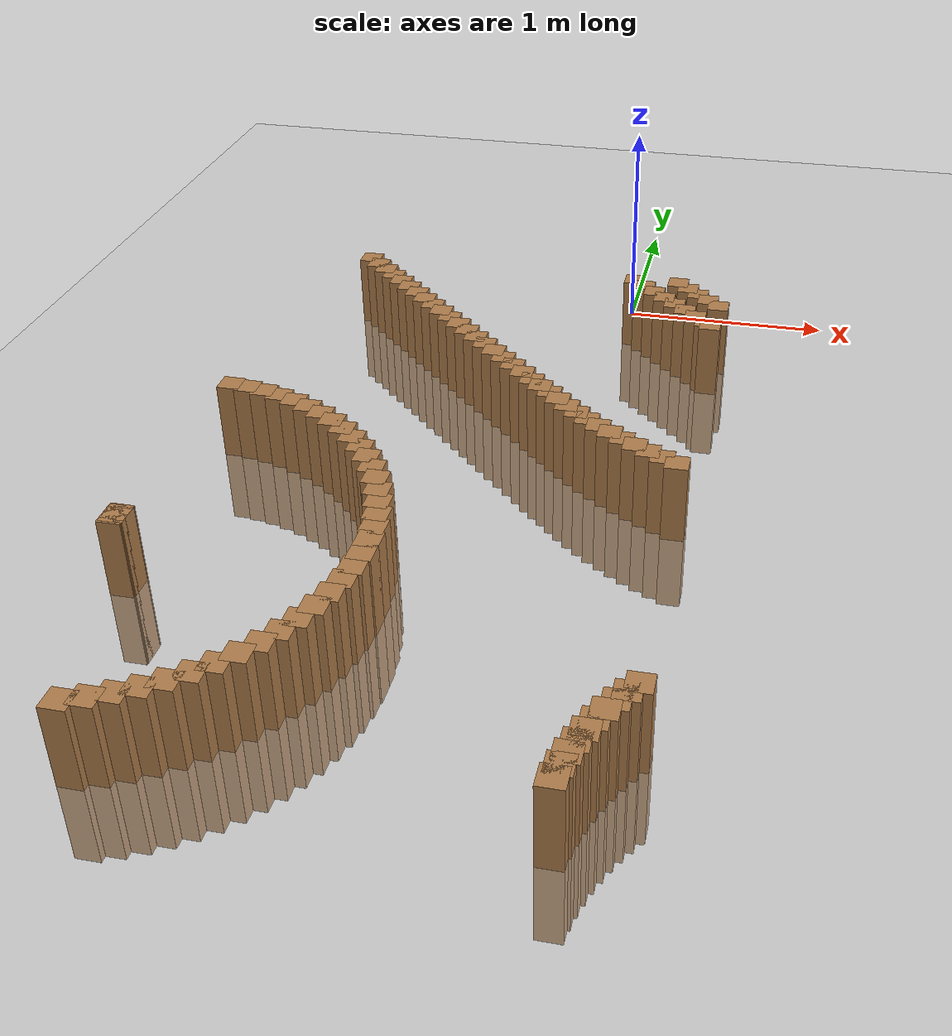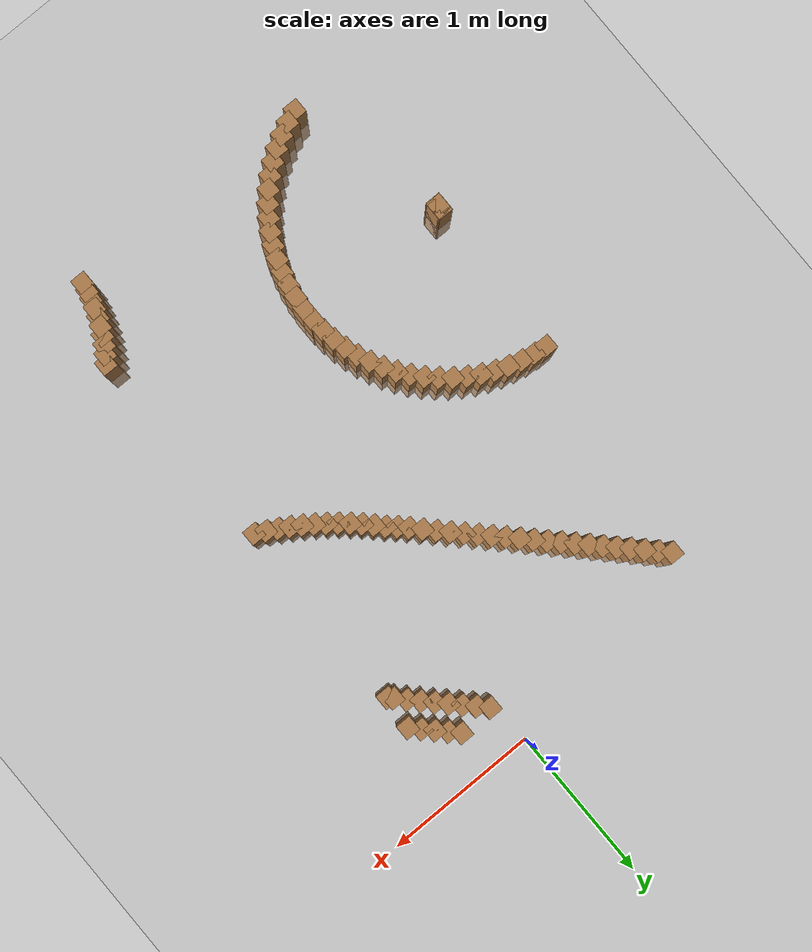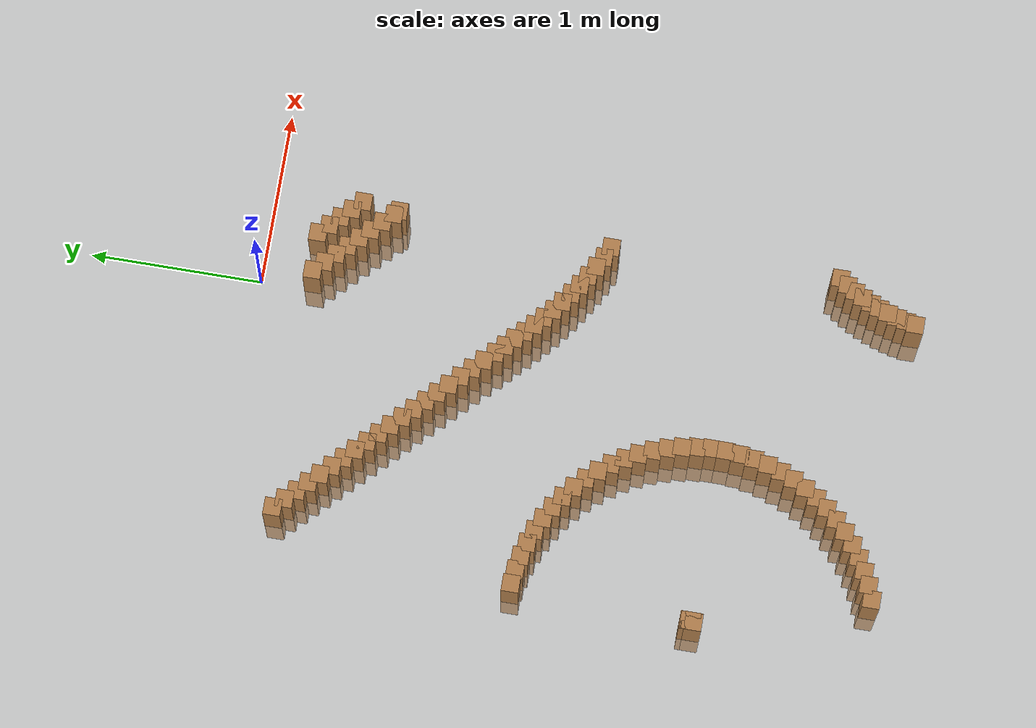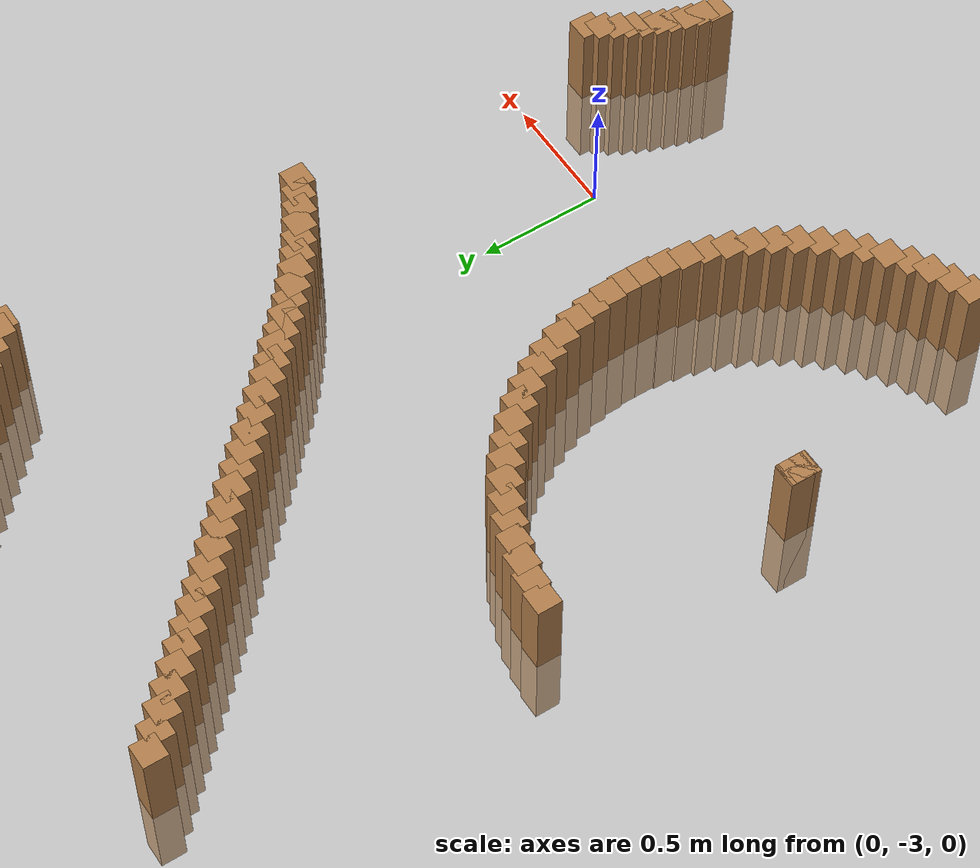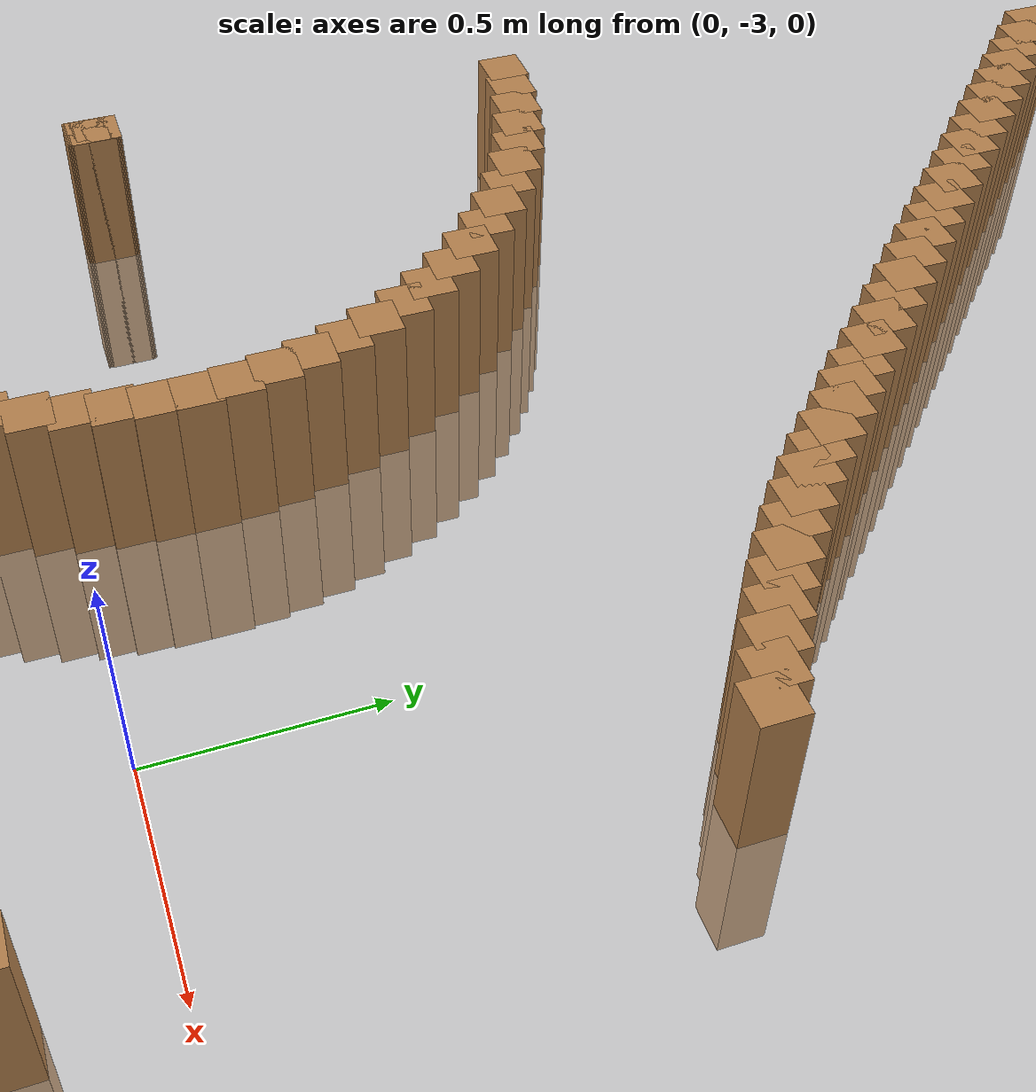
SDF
<sdf version="1.6">
 <world name="default">
  <model name="ground_plane">
   <static>1</static>
   <link name="link">
    <collision name="collision">
     <geometry><plane><normal>0 0 1</normal><size>100 100</size></plane></geometry>
     <surface><friction><ode><mu>100</mu><mu2>50</mu2></ode></friction></surface>
    </collision>
    <visual name="visual">
     <cast_shadows>0</cast_shadows>
     <geometry><plane><normal>0 0 1</normal><size>100 100</size></plane></geometry>
     <material>
      <script><uri>file://media/materials/scripts/gazebo.material</uri><name>Gazebo/Grey</name></script>
     </material>
    </visual>
   </link>
  </model>
  <model name="track">
   <link name="inner_261">
    <pose>0.459542 -1.963471 0.000000 0 -0 0</pose>
    <collision name="collision"><geometry><box><size>0.1 0.1 0.7</size></box></geometry></collision>
    <visual name="visual">
     <geometry><box><size>0.1 0.1 0.7</size></box></geometry>
     <material>
      <script><uri>file://media/materials/scripts/gazebo.material</uri><name>Gazebo/Wood</name></script>
     </material>
    </visual>
   </link>
   <link name="inner_262">
    <pose>0.395277 -1.931175 0.000000 0 -0 0</pose>
    <collision name="collision"><geometry><box><size>0.1 0.1 0.7</size></box></geometry></collision>
    <visual name="visual">
     <geometry><box><size>0.1 0.1 0.7</size></box></geometry>
     <material>
      <script><uri>file://media/materials/scripts/gazebo.material</uri><name>Gazebo/Wood</name></script>
     </material>
    </visual>
   </link>
   <link name="inner_263">
    <pose>0.332395 -1.896803 0.000000 0 -0 0</pose>
    <collision name="collision"><geometry><box><size>0.1 0.1 0.7</size></box></geometry></collision>
    <visual name="visual">
     <geometry><box><size>0.1 0.1 0.7</size></box></geometry>
     <material>
      <script><uri>file://media/materials/scripts/gazebo.material</uri><name>Gazebo/Wood</name></script>
     </material>
    </visual>
   </link>
   <link name="inner_264">
    <pose>0.270962 -1.860413 0.000000 0 -0 0</pose>
    <collision name="collision"><geometry><box><size>0.1 0.1 0.7</size></box></geometry></collision>
    <visual name="visual">
     <geometry><box><size>0.1 0.1 0.7</size></box></geometry>
     <material>
      <script><uri>file://media/materials/scripts/gazebo.material</uri><name>Gazebo/Wood</name></script>
     </material>
    </visual>
   </link>
   <link name="inner_265">
    <pose>0.211042 -1.822065 0.000000 0 -0 0</pose>
    <collision name="collision"><geometry><box><size>0.1 0.1 0.7</size></box></geometry></collision>
    <visual name="visual">
     <geometry><box><size>0.1 0.1 0.7</size></box></geometry>
     <material>
      <script><uri>file://media/materials/scripts/gazebo.material</uri><name>Gazebo/Wood</name></script>
     </material>
    </visual>
   </link>
   <link name="inner_266">
    <pose>0.152698 -1.781817 0.000000 0 -0 0</pose>
    <collision name="collision"><geometry><box><size>0.1 0.1 0.7</size></box></geometry></collision>
    <visual name="visual">
     <geometry><box><size>0.1 0.1 0.7</size></box></geometry>
     <material>
      <script><uri>file://media/materials/scripts/gazebo.material</uri><name>Gazebo/Wood</name></script>
     </material>
    </visual>
   </link>
   <link name="inner_267">
    <pose>0.095989 -1.739734 0.000000 0 -0 0</pose>
    <collision name="collision"><geometry><box><size>0.1 0.1 0.7</size></box></geometry></collision>
    <visual name="visual">
     <geometry><box><size>0.1 0.1 0.7</size></box></geometry>
     <material>
      <script><uri>file://media/materials/scripts/gazebo.material</uri><name>Gazebo/Wood</name></script>
     </material>
    </visual>
   </link>
   <link name="inner_268">
    <pose>0.040971 -1.695879 0.000000 0 -0 0</pose>
    <collision name="collision"><geometry><box><size>0.1 0.1 0.7</size></box></geometry></collision>
    <visual name="visual">
     <geometry><box><size>0.1 0.1 0.7</size></box></geometry>
     <material>
      <script><uri>file://media/materials/scripts/gazebo.material</uri><name>Gazebo/Wood</name></script>
     </material>
    </visual>
   </link>
   <link name="inner_269">
    <pose>-0.012299 -1.650320 0.000000 0 -0 0</pose>
    <collision name="collision"><geometry><box><size>0.1 0.1 0.7</size></box></geometry></collision>
    <visual name="visual">
     <geometry><box><size>0.1 0.1 0.7</size></box></geometry>
     <material>
      <script><uri>file://media/materials/scripts/gazebo.material</uri><name>Gazebo/Wood</name></script>
     </material>
    </visual>
   </link>
   <link name="inner_270">
    <pose>-0.063772 -1.603123 0.000000 0 -0 0</pose>
    <collision name="collision"><geometry><box><size>0.1 0.1 0.7</size></box></geometry></collision>
    <visual name="visual">
     <geometry><box><size>0.1 0.1 0.7</size></box></geometry>
     <material>
      <script><uri>file://media/materials/scripts/gazebo.material</uri><name>Gazebo/Wood</name></script>
     </material>
    </visual>
   </link>
   <link name="inner_271">
    <pose>-0.113396 -1.554359 0.000000 0 -0 0</pose>
    <collision name="collision"><geometry><box><size>0.1 0.1 0.7</size></box></geometry></collision>
    <visual name="visual">
     <geometry><box><size>0.1 0.1 0.7</size></box></geometry>
     <material>
      <script><uri>file://media/materials/scripts/gazebo.material</uri><name>Gazebo/Wood</name></script>
     </material>
    </visual>
   </link>
   <link name="inner_272">
    <pose>-0.161126 -1.504098 0.000000 0 -0 0</pose>
    <collision name="collision"><geometry><box><size>0.1 0.1 0.7</size></box></geometry></collision>
    <visual name="visual">
     <geometry><box><size>0.1 0.1 0.7</size></box></geometry>
     <material>
      <script><uri>file://media/materials/scripts/gazebo.material</uri><name>Gazebo/Wood</name></script>
     </material>
    </visual>
   </link>
   <link name="inner_273">
    <pose>-0.212168 -1.458035 0.000000 0 -0 0</pose>
    <collision name="collision"><geometry><box><size>0.1 0.1 0.7</size></box></geometry></collision>
    <visual name="visual">
     <geometry><box><size>0.1 0.1 0.7</size></box></geometry>
     <material>
      <script><uri>file://media/materials/scripts/gazebo.material</uri><name>Gazebo/Wood</name></script>
     </material>
    </visual>
   </link>
   <link name="inner_274">
    <pose>-0.261607 -1.410256 0.000000 0 -0 0</pose>
    <collision name="collision"><geometry><box><size>0.1 0.1 0.7</size></box></geometry></collision>
    <visual name="visual">
     <geometry><box><size>0.1 0.1 0.7</size></box></geometry>
     <material>
      <script><uri>file://media/materials/scripts/gazebo.material</uri><name>Gazebo/Wood</name></script>
     </material>
    </visual>
   </link>
   <link name="inner_275">
    <pose>-0.316542 -1.352604 0.000000 0 -0 0</pose>
    <collision name="collision"><geometry><box><size>0.1 0.1 0.7</size></box></geometry></collision>
    <visual name="visual">
     <geometry><box><size>0.1 0.1 0.7</size></box></geometry>
     <material>
      <script><uri>file://media/materials/scripts/gazebo.material</uri><name>Gazebo/Wood</name></script>
     </material>
    </visual>
   </link>
   <link name="inner_276">
    <pose>-0.374194 -1.294952 0.000000 0 -0 0</pose>
    <collision name="collision"><geometry><box><size>0.1 0.1 0.7</size></box></geometry></collision>
    <visual name="visual">
     <geometry><box><size>0.1 0.1 0.7</size></box></geometry>
     <material>
      <script><uri>file://media/materials/scripts/gazebo.material</uri><name>Gazebo/Wood</name></script>
     </material>
    </visual>
   </link>
   <link name="inner_277">
    <pose>-0.431846 -1.237300 0.000000 0 -0 0</pose>
    <collision name="collision"><geometry><box><size>0.1 0.1 0.7</size></box></geometry></collision>
    <visual name="visual">
     <geometry><box><size>0.1 0.1 0.7</size></box></geometry>
     <material>
      <script><uri>file://media/materials/scripts/gazebo.material</uri><name>Gazebo/Wood</name></script>
     </material>
    </visual>
   </link>
   <link name="inner_278">
    <pose>-0.489498 -1.179648 0.000000 0 -0 0</pose>
    <collision name="collision"><geometry><box><size>0.1 0.1 0.7</size></box></geometry></collision>
    <visual name="visual">
     <geometry><box><size>0.1 0.1 0.7</size></box></geometry>
     <material>
      <script><uri>file://media/materials/scripts/gazebo.material</uri><name>Gazebo/Wood</name></script>
     </material>
    </visual>
   </link>
   <link name="inner_279">
    <pose>-0.547150 -1.121997 0.000000 0 -0 0</pose>
    <collision name="collision"><geometry><box><size>0.1 0.1 0.7</size></box></geometry></collision>
    <visual name="visual">
     <geometry><box><size>0.1 0.1 0.7</size></box></geometry>
     <material>
      <script><uri>file://media/materials/scripts/gazebo.material</uri><name>Gazebo/Wood</name></script>
     </material>
    </visual>
   </link>
   <link name="inner_280">
    <pose>-0.604801 -1.064345 0.000000 0 -0 0</pose>
    <collision name="collision"><geometry><box><size>0.1 0.1 0.7</size></box></geometry></collision>
    <visual name="visual">
     <geometry><box><size>0.1 0.1 0.7</size></box></geometry>
     <material>
      <script><uri>file://media/materials/scripts/gazebo.material</uri><name>Gazebo/Wood</name></script>
     </material>
    </visual>
   </link>
   <link name="inner_281">
    <pose>-0.662453 -1.006693 0.000000 0 -0 0</pose>
    <collision name="collision"><geometry><box><size>0.1 0.1 0.7</size></box></geometry></collision>
    <visual name="visual">
     <geometry><box><size>0.1 0.1 0.7</size></box></geometry>
     <material>
      <script><uri>file://media/materials/scripts/gazebo.material</uri><name>Gazebo/Wood</name></script>
     </material>
    </visual>
   </link>
   <link name="inner_282">
    <pose>-0.720105 -0.949041 0.000000 0 -0 0</pose>
    <collision name="collision"><geometry><box><size>0.1 0.1 0.7</size></box></geometry></collision>
    <visual name="visual">
     <geometry><box><size>0.1 0.1 0.7</size></box></geometry>
     <material>
      <script><uri>file://media/materials/scripts/gazebo.material</uri><name>Gazebo/Wood</name></script>
     </material>
    </visual>
   </link>
   <link name="inner_283">
    <pose>-0.777757 -0.891389 0.000000 0 -0 0</pose>
    <collision name="collision"><geometry><box><size>0.1 0.1 0.7</size></box></geometry></collision>
    <visual name="visual">
     <geometry><box><size>0.1 0.1 0.7</size></box></geometry>
     <material>
      <script><uri>file://media/materials/scripts/gazebo.material</uri><name>Gazebo/Wood</name></script>
     </material>
    </visual>
   </link>
   <link name="inner_284">
    <pose>-0.835409 -0.833737 0.000000 0 -0 0</pose>
    <collision name="collision"><geometry><box><size>0.1 0.1 0.7</size></box></geometry></collision>
    <visual name="visual">
     <geometry><box><size>0.1 0.1 0.7</size></box></geometry>
     <material>
      <script><uri>file://media/materials/scripts/gazebo.material</uri><name>Gazebo/Wood</name></script>
     </material>
    </visual>
   </link>
   <link name="inner_285">
    <pose>-0.893060 -0.776086 0.000000 0 -0 0</pose>
    <collision name="collision"><geometry><box><size>0.1 0.1 0.7</size></box></geometry></collision>
    <visual name="visual">
     <geometry><box><size>0.1 0.1 0.7</size></box></geometry>
     <material>
      <script><uri>file://media/materials/scripts/gazebo.material</uri><name>Gazebo/Wood</name></script>
     </material>
    </visual>
   </link>
   <link name="inner_286">
    <pose>-0.950712 -0.718434 0.000000 0 -0 0</pose>
    <collision name="collision"><geometry><box><size>0.1 0.1 0.7</size></box></geometry></collision>
    <visual name="visual">
     <geometry><box><size>0.1 0.1 0.7</size></box></geometry>
     <material>
      <script><uri>file://media/materials/scripts/gazebo.material</uri><name>Gazebo/Wood</name></script>
     </material>
    </visual>
   </link>
   <link name="inner_287">
    <pose>-1.008364 -0.660782 0.000000 0 -0 0</pose>
    <collision name="collision"><geometry><box><size>0.1 0.1 0.7</size></box></geometry></collision>
    <visual name="visual">
     <geometry><box><size>0.1 0.1 0.7</size></box></geometry>
     <material>
      <script><uri>file://media/materials/scripts/gazebo.material</uri><name>Gazebo/Wood</name></script>
     </material>
    </visual>
   </link>
   <link name="inner_288">
    <pose>-1.066016 -0.603130 0.000000 0 -0 0</pose>
    <collision name="collision"><geometry><box><size>0.1 0.1 0.7</size></box></geometry></collision>
    <visual name="visual">
     <geometry><box><size>0.1 0.1 0.7</size></box></geometry>
     <material>
      <script><uri>file://media/materials/scripts/gazebo.material</uri><name>Gazebo/Wood</name></script>
     </material>
    </visual>
   </link>
   <link name="inner_289">
    <pose>-1.123668 -0.545478 0.000000 0 -0 0</pose>
    <collision name="collision"><geometry><box><size>0.1 0.1 0.7</size></box></geometry></collision>
    <visual name="visual">
     <geometry><box><size>0.1 0.1 0.7</size></box></geometry>
     <material>
      <script><uri>file://media/materials/scripts/gazebo.material</uri><name>Gazebo/Wood</name></script>
     </material>
    </visual>
   </link>
   <link name="inner_290">
    <pose>-1.181319 -0.487827 0.000000 0 -0 0</pose>
    <collision name="collision"><geometry><box><size>0.1 0.1 0.7</size></box></geometry></collision>
    <visual name="visual">
     <geometry><box><size>0.1 0.1 0.7</size></box></geometry>
     <material>
      <script><uri>file://media/materials/scripts/gazebo.material</uri><name>Gazebo/Wood</name></script>
     </material>
    </visual>
   </link>
   <link name="inner_291">
    <pose>-1.238971 -0.430175 0.000000 0 -0 0</pose>
    <collision name="collision"><geometry><box><size>0.1 0.1 0.7</size></box></geometry></collision>
    <visual name="visual">
     <geometry><box><size>0.1 0.1 0.7</size></box></geometry>
     <material>
      <script><uri>file://media/materials/scripts/gazebo.material</uri><name>Gazebo/Wood</name></script>
     </material>
    </visual>
   </link>
   <link name="inner_292">
    <pose>-1.296623 -0.372523 0.000000 0 -0 0</pose>
    <collision name="collision"><geometry><box><size>0.1 0.1 0.7</size></box></geometry></collision>
    <visual name="visual">
     <geometry><box><size>0.1 0.1 0.7</size></box></geometry>
     <material>
      <script><uri>file://media/materials/scripts/gazebo.material</uri><name>Gazebo/Wood</name></script>
     </material>
    </visual>
   </link>
   <link name="inner_293">
    <pose>-1.354275 -0.314871 0.000000 0 -0 0</pose>
    <collision name="collision"><geometry><box><size>0.1 0.1 0.7</size></box></geometry></collision>
    <visual name="visual">
     <geometry><box><size>0.1 0.1 0.7</size></box></geometry>
     <material>
      <script><uri>file://media/materials/scripts/gazebo.material</uri><name>Gazebo/Wood</name></script>
     </material>
    </visual>
   </link>
   <link name="inner_354">
    <pose>-1.564920 -1.719590 0.000000 0 -0 0</pose>
    <collision name="collision"><geometry><box><size>0.1 0.1 0.7</size></box></geometry></collision>
    <visual name="visual">
     <geometry><box><size>0.1 0.1 0.7</size></box></geometry>
     <material>
      <script><uri>file://media/materials/scripts/gazebo.material</uri><name>Gazebo/Wood</name></script>
     </material>
    </visual>
   </link>
   <link name="inner_355">
    <pose>-1.481734 -1.729691 0.000000 0 -0 0</pose>
    <collision name="collision"><geometry><box><size>0.1 0.1 0.7</size></box></geometry></collision>
    <visual name="visual">
     <geometry><box><size>0.1 0.1 0.7</size></box></geometry>
     <material>
      <script><uri>file://media/materials/scripts/gazebo.material</uri><name>Gazebo/Wood</name></script>
     </material>
    </visual>
   </link>
   <link name="inner_356">
    <pose>-1.399631 -1.746452 0.000000 0 -0 0</pose>
    <collision name="collision"><geometry><box><size>0.1 0.1 0.7</size></box></geometry></collision>
    <visual name="visual">
     <geometry><box><size>0.1 0.1 0.7</size></box></geometry>
     <material>
      <script><uri>file://media/materials/scripts/gazebo.material</uri><name>Gazebo/Wood</name></script>
     </material>
    </visual>
   </link>
   <link name="inner_357">
    <pose>-1.319143 -1.769766 0.000000 0 -0 0</pose>
    <collision name="collision"><geometry><box><size>0.1 0.1 0.7</size></box></geometry></collision>
    <visual name="visual">
     <geometry><box><size>0.1 0.1 0.7</size></box></geometry>
     <material>
      <script><uri>file://media/materials/scripts/gazebo.material</uri><name>Gazebo/Wood</name></script>
     </material>
    </visual>
   </link>
   <link name="inner_358">
    <pose>-1.240792 -1.799481 0.000000 0 -0 0</pose>
    <collision name="collision"><geometry><box><size>0.1 0.1 0.7</size></box></geometry></collision>
    <visual name="visual">
     <geometry><box><size>0.1 0.1 0.7</size></box></geometry>
     <material>
      <script><uri>file://media/materials/scripts/gazebo.material</uri><name>Gazebo/Wood</name></script>
     </material>
    </visual>
   </link>
   <link name="inner_359">
    <pose>-1.165085 -1.835404 0.000000 0 -0 0</pose>
    <collision name="collision"><geometry><box><size>0.1 0.1 0.7</size></box></geometry></collision>
    <visual name="visual">
     <geometry><box><size>0.1 0.1 0.7</size></box></geometry>
     <material>
      <script><uri>file://media/materials/scripts/gazebo.material</uri><name>Gazebo/Wood</name></script>
     </material>
    </visual>
   </link>
   <link name="inner_360">
    <pose>-1.092515 -1.877302 0.000000 0 -0 0</pose>
    <collision name="collision"><geometry><box><size>0.1 0.1 0.7</size></box></geometry></collision>
    <visual name="visual">
     <geometry><box><size>0.1 0.1 0.7</size></box></geometry>
     <material>
      <script><uri>file://media/materials/scripts/gazebo.material</uri><name>Gazebo/Wood</name></script>
     </material>
    </visual>
   </link>
   <link name="inner_361">
    <pose>-1.023552 -1.924904 0.000000 0 -0 0</pose>
    <collision name="collision"><geometry><box><size>0.1 0.1 0.7</size></box></geometry></collision>
    <visual name="visual">
     <geometry><box><size>0.1 0.1 0.7</size></box></geometry>
     <material>
      <script><uri>file://media/materials/scripts/gazebo.material</uri><name>Gazebo/Wood</name></script>
     </material>
    </visual>
   </link>
   <link name="inner_362">
    <pose>-0.958643 -1.977901 0.000000 0 -0 0</pose>
    <collision name="collision"><geometry><box><size>0.1 0.1 0.7</size></box></geometry></collision>
    <visual name="visual">
     <geometry><box><size>0.1 0.1 0.7</size></box></geometry>
     <material>
      <script><uri>file://media/materials/scripts/gazebo.material</uri><name>Gazebo/Wood</name></script>
     </material>
    </visual>
   </link>
   <link name="inner_363">
    <pose>-0.898208 -2.035949 0.000000 0 -0 0</pose>
    <collision name="collision"><geometry><box><size>0.1 0.1 0.7</size></box></geometry></collision>
    <visual name="visual">
     <geometry><box><size>0.1 0.1 0.7</size></box></geometry>
     <material>
      <script><uri>file://media/materials/scripts/gazebo.material</uri><name>Gazebo/Wood</name></script>
     </material>
    </visual>
   </link>
   <link name="inner_364">
    <pose>-0.842641 -2.098672 0.000000 0 -0 0</pose>
    <collision name="collision"><geometry><box><size>0.1 0.1 0.7</size></box></geometry></collision>
    <visual name="visual">
     <geometry><box><size>0.1 0.1 0.7</size></box></geometry>
     <material>
      <script><uri>file://media/materials/scripts/gazebo.material</uri><name>Gazebo/Wood</name></script>
     </material>
    </visual>
   </link>
   <link name="inner_365">
    <pose>-0.792301 -2.165662 0.000000 0 -0 0</pose>
    <collision name="collision"><geometry><box><size>0.1 0.1 0.7</size></box></geometry></collision>
    <visual name="visual">
     <geometry><box><size>0.1 0.1 0.7</size></box></geometry>
     <material>
      <script><uri>file://media/materials/scripts/gazebo.material</uri><name>Gazebo/Wood</name></script>
     </material>
    </visual>
   </link>
   <link name="inner_366">
    <pose>-0.747514 -2.236486 0.000000 0 -0 0</pose>
    <collision name="collision"><geometry><box><size>0.1 0.1 0.7</size></box></geometry></collision>
    <visual name="visual">
     <geometry><box><size>0.1 0.1 0.7</size></box></geometry>
     <material>
      <script><uri>file://media/materials/scripts/gazebo.material</uri><name>Gazebo/Wood</name></script>
     </material>
    </visual>
   </link>
   <link name="inner_367">
    <pose>-0.708572 -2.310685 0.000000 0 -0 0</pose>
    <collision name="collision"><geometry><box><size>0.1 0.1 0.7</size></box></geometry></collision>
    <visual name="visual">
     <geometry><box><size>0.1 0.1 0.7</size></box></geometry>
     <material>
      <script><uri>file://media/materials/scripts/gazebo.material</uri><name>Gazebo/Wood</name></script>
     </material>
    </visual>
   </link>
   <link name="inner_368">
    <pose>-0.675726 -2.387776 0.000000 0 -0 0</pose>
    <collision name="collision"><geometry><box><size>0.1 0.1 0.7</size></box></geometry></collision>
    <visual name="visual">
     <geometry><box><size>0.1 0.1 0.7</size></box></geometry>
     <material>
      <script><uri>file://media/materials/scripts/gazebo.material</uri><name>Gazebo/Wood</name></script>
     </material>
    </visual>
   </link>
   <link name="inner_369">
    <pose>-0.649191 -2.467260 0.000000 0 -0 0</pose>
    <collision name="collision"><geometry><box><size>0.1 0.1 0.7</size></box></geometry></collision>
    <visual name="visual">
     <geometry><box><size>0.1 0.1 0.7</size></box></geometry>
     <material>
      <script><uri>file://media/materials/scripts/gazebo.material</uri><name>Gazebo/Wood</name></script>
     </material>
    </visual>
   </link>
   <link name="inner_370">
    <pose>-0.629137 -2.548622 0.000000 0 -0 0</pose>
    <collision name="collision"><geometry><box><size>0.1 0.1 0.7</size></box></geometry></collision>
    <visual name="visual">
     <geometry><box><size>0.1 0.1 0.7</size></box></geometry>
     <material>
      <script><uri>file://media/materials/scripts/gazebo.material</uri><name>Gazebo/Wood</name></script>
     </material>
    </visual>
   </link>
   <link name="inner_371">
    <pose>-0.615695 -2.631333 0.000000 0 -0 0</pose>
    <collision name="collision"><geometry><box><size>0.1 0.1 0.7</size></box></geometry></collision>
    <visual name="visual">
     <geometry><box><size>0.1 0.1 0.7</size></box></geometry>
     <material>
      <script><uri>file://media/materials/scripts/gazebo.material</uri><name>Gazebo/Wood</name></script>
     </material>
    </visual>
   </link>
   <link name="inner_372">
    <pose>-0.608952 -2.714858 0.000000 0 -0 0</pose>
    <collision name="collision"><geometry><box><size>0.1 0.1 0.7</size></box></geometry></collision>
    <visual name="visual">
     <geometry><box><size>0.1 0.1 0.7</size></box></geometry>
     <material>
      <script><uri>file://media/materials/scripts/gazebo.material</uri><name>Gazebo/Wood</name></script>
     </material>
    </visual>
   </link>
   <link name="inner_373">
    <pose>-0.608952 -2.798655 0.000000 0 -0 0</pose>
    <collision name="collision"><geometry><box><size>0.1 0.1 0.7</size></box></geometry></collision>
    <visual name="visual">
     <geometry><box><size>0.1 0.1 0.7</size></box></geometry>
     <material>
      <script><uri>file://media/materials/scripts/gazebo.material</uri><name>Gazebo/Wood</name></script>
     </material>
    </visual>
   </link>
   <link name="inner_374">
    <pose>-0.615695 -2.882180 0.000000 0 -0 0</pose>
    <collision name="collision"><geometry><box><size>0.1 0.1 0.7</size></box></geometry></collision>
    <visual name="visual">
     <geometry><box><size>0.1 0.1 0.7</size></box></geometry>
     <material>
      <script><uri>file://media/materials/scripts/gazebo.material</uri><name>Gazebo/Wood</name></script>
     </material>
    </visual>
   </link>
   <link name="inner_375">
    <pose>-0.629137 -2.964892 0.000000 0 -0 0</pose>
    <collision name="collision"><geometry><box><size>0.1 0.1 0.7</size></box></geometry></collision>
    <visual name="visual">
     <geometry><box><size>0.1 0.1 0.7</size></box></geometry>
     <material>
      <script><uri>file://media/materials/scripts/gazebo.material</uri><name>Gazebo/Wood</name></script>
     </material>
    </visual>
   </link>
   <link name="inner_376">
    <pose>-0.649191 -3.046253 0.000000 0 -0 0</pose>
    <collision name="collision"><geometry><box><size>0.1 0.1 0.7</size></box></geometry></collision>
    <visual name="visual">
     <geometry><box><size>0.1 0.1 0.7</size></box></geometry>
     <material>
      <script><uri>file://media/materials/scripts/gazebo.material</uri><name>Gazebo/Wood</name></script>
     </material>
    </visual>
   </link>
   <link name="inner_377">
    <pose>-0.675726 -3.125738 0.000000 0 -0 0</pose>
    <collision name="collision"><geometry><box><size>0.1 0.1 0.7</size></box></geometry></collision>
    <visual name="visual">
     <geometry><box><size>0.1 0.1 0.7</size></box></geometry>
     <material>
      <script><uri>file://media/materials/scripts/gazebo.material</uri><name>Gazebo/Wood</name></script>
     </material>
    </visual>
   </link>
   <link name="inner_378">
    <pose>-0.708572 -3.202829 0.000000 0 -0 0</pose>
    <collision name="collision"><geometry><box><size>0.1 0.1 0.7</size></box></geometry></collision>
    <visual name="visual">
     <geometry><box><size>0.1 0.1 0.7</size></box></geometry>
     <material>
      <script><uri>file://media/materials/scripts/gazebo.material</uri><name>Gazebo/Wood</name></script>
     </material>
    </visual>
   </link>
   <link name="inner_379">
    <pose>-0.747514 -3.277027 0.000000 0 -0 0</pose>
    <collision name="collision"><geometry><box><size>0.1 0.1 0.7</size></box></geometry></collision>
    <visual name="visual">
     <geometry><box><size>0.1 0.1 0.7</size></box></geometry>
     <material>
      <script><uri>file://media/materials/scripts/gazebo.material</uri><name>Gazebo/Wood</name></script>
     </material>
    </visual>
   </link>
   <link name="inner_380">
    <pose>-0.792301 -3.347851 0.000000 0 -0 0</pose>
    <collision name="collision"><geometry><box><size>0.1 0.1 0.7</size></box></geometry></collision>
    <visual name="visual">
     <geometry><box><size>0.1 0.1 0.7</size></box></geometry>
     <material>
      <script><uri>file://media/materials/scripts/gazebo.material</uri><name>Gazebo/Wood</name></script>
     </material>
    </visual>
   </link>
   <link name="inner_381">
    <pose>-0.842641 -3.414842 0.000000 0 -0 0</pose>
    <collision name="collision"><geometry><box><size>0.1 0.1 0.7</size></box></geometry></collision>
    <visual name="visual">
     <geometry><box><size>0.1 0.1 0.7</size></box></geometry>
     <material>
      <script><uri>file://media/materials/scripts/gazebo.material</uri><name>Gazebo/Wood</name></script>
     </material>
    </visual>
   </link>
   <link name="inner_382">
    <pose>-0.898208 -3.477565 0.000000 0 -0 0</pose>
    <collision name="collision"><geometry><box><size>0.1 0.1 0.7</size></box></geometry></collision>
    <visual name="visual">
     <geometry><box><size>0.1 0.1 0.7</size></box></geometry>
     <material>
      <script><uri>file://media/materials/scripts/gazebo.material</uri><name>Gazebo/Wood</name></script>
     </material>
    </visual>
   </link>
   <link name="inner_383">
    <pose>-0.958643 -3.535613 0.000000 0 -0 0</pose>
    <collision name="collision"><geometry><box><size>0.1 0.1 0.7</size></box></geometry></collision>
    <visual name="visual">
     <geometry><box><size>0.1 0.1 0.7</size></box></geometry>
     <material>
      <script><uri>file://media/materials/scripts/gazebo.material</uri><name>Gazebo/Wood</name></script>
     </material>
    </visual>
   </link>
   <link name="inner_384">
    <pose>-1.023552 -3.588609 0.000000 0 -0 0</pose>
    <collision name="collision"><geometry><box><size>0.1 0.1 0.7</size></box></geometry></collision>
    <visual name="visual">
     <geometry><box><size>0.1 0.1 0.7</size></box></geometry>
     <material>
      <script><uri>file://media/materials/scripts/gazebo.material</uri><name>Gazebo/Wood</name></script>
     </material>
    </visual>
   </link>
   <link name="inner_385">
    <pose>-1.092515 -3.636211 0.000000 0 -0 0</pose>
    <collision name="collision"><geometry><box><size>0.1 0.1 0.7</size></box></geometry></collision>
    <visual name="visual">
     <geometry><box><size>0.1 0.1 0.7</size></box></geometry>
     <material>
      <script><uri>file://media/materials/scripts/gazebo.material</uri><name>Gazebo/Wood</name></script>
     </material>
    </visual>
   </link>
   <link name="inner_386">
    <pose>-1.165085 -3.678110 0.000000 0 -0 0</pose>
    <collision name="collision"><geometry><box><size>0.1 0.1 0.7</size></box></geometry></collision>
    <visual name="visual">
     <geometry><box><size>0.1 0.1 0.7</size></box></geometry>
     <material>
      <script><uri>file://media/materials/scripts/gazebo.material</uri><name>Gazebo/Wood</name></script>
     </material>
    </visual>
   </link>
   <link name="inner_387">
    <pose>-1.240792 -3.714033 0.000000 0 -0 0</pose>
    <collision name="collision"><geometry><box><size>0.1 0.1 0.7</size></box></geometry></collision>
    <visual name="visual">
     <geometry><box><size>0.1 0.1 0.7</size></box></geometry>
     <material>
      <script><uri>file://media/materials/scripts/gazebo.material</uri><name>Gazebo/Wood</name></script>
     </material>
    </visual>
   </link>
   <link name="inner_388">
    <pose>-1.319143 -3.743747 0.000000 0 -0 0</pose>
    <collision name="collision"><geometry><box><size>0.1 0.1 0.7</size></box></geometry></collision>
    <visual name="visual">
     <geometry><box><size>0.1 0.1 0.7</size></box></geometry>
     <material>
      <script><uri>file://media/materials/scripts/gazebo.material</uri><name>Gazebo/Wood</name></script>
     </material>
    </visual>
   </link>
   <link name="inner_454">
    <pose>0.297491 -3.750578 0.000000 0 -0 0</pose>
    <collision name="collision"><geometry><box><size>0.1 0.1 0.7</size></box></geometry></collision>
    <visual name="visual">
     <geometry><box><size>0.1 0.1 0.7</size></box></geometry>
     <material>
      <script><uri>file://media/materials/scripts/gazebo.material</uri><name>Gazebo/Wood</name></script>
     </material>
    </visual>
   </link>
   <link name="inner_455">
    <pose>0.308111 -3.695233 0.000000 0 -0 0</pose>
    <collision name="collision"><geometry><box><size>0.1 0.1 0.7</size></box></geometry></collision>
    <visual name="visual">
     <geometry><box><size>0.1 0.1 0.7</size></box></geometry>
     <material>
      <script><uri>file://media/materials/scripts/gazebo.material</uri><name>Gazebo/Wood</name></script>
     </material>
    </visual>
   </link>
   <link name="inner_456">
    <pose>0.321711 -3.640545 0.000000 0 -0 0</pose>
    <collision name="collision"><geometry><box><size>0.1 0.1 0.7</size></box></geometry></collision>
    <visual name="visual">
     <geometry><box><size>0.1 0.1 0.7</size></box></geometry>
     <material>
      <script><uri>file://media/materials/scripts/gazebo.material</uri><name>Gazebo/Wood</name></script>
     </material>
    </visual>
   </link>
   <link name="inner_457">
    <pose>0.338253 -3.586673 0.000000 0 -0 0</pose>
    <collision name="collision"><geometry><box><size>0.1 0.1 0.7</size></box></geometry></collision>
    <visual name="visual">
     <geometry><box><size>0.1 0.1 0.7</size></box></geometry>
     <material>
      <script><uri>file://media/materials/scripts/gazebo.material</uri><name>Gazebo/Wood</name></script>
     </material>
    </visual>
   </link>
   <link name="inner_458">
    <pose>0.357686 -3.533775 0.000000 0 -0 0</pose>
    <collision name="collision"><geometry><box><size>0.1 0.1 0.7</size></box></geometry></collision>
    <visual name="visual">
     <geometry><box><size>0.1 0.1 0.7</size></box></geometry>
     <material>
      <script><uri>file://media/materials/scripts/gazebo.material</uri><name>Gazebo/Wood</name></script>
     </material>
    </visual>
   </link>
   <link name="inner_459">
    <pose>0.379955 -3.482007 0.000000 0 -0 0</pose>
    <collision name="collision"><geometry><box><size>0.1 0.1 0.7</size></box></geometry></collision>
    <visual name="visual">
     <geometry><box><size>0.1 0.1 0.7</size></box></geometry>
     <material>
      <script><uri>file://media/materials/scripts/gazebo.material</uri><name>Gazebo/Wood</name></script>
     </material>
    </visual>
   </link>
   <link name="inner_460">
    <pose>0.404994 -3.431521 0.000000 0 -0 0</pose>
    <collision name="collision"><geometry><box><size>0.1 0.1 0.7</size></box></geometry></collision>
    <visual name="visual">
     <geometry><box><size>0.1 0.1 0.7</size></box></geometry>
     <material>
      <script><uri>file://media/materials/scripts/gazebo.material</uri><name>Gazebo/Wood</name></script>
     </material>
    </visual>
   </link>
   <link name="inner_461">
    <pose>0.432730 -3.382464 0.000000 0 -0 0</pose>
    <collision name="collision"><geometry><box><size>0.1 0.1 0.7</size></box></geometry></collision>
    <visual name="visual">
     <geometry><box><size>0.1 0.1 0.7</size></box></geometry>
     <material>
      <script><uri>file://media/materials/scripts/gazebo.material</uri><name>Gazebo/Wood</name></script>
     </material>
    </visual>
   </link>
   <link name="inner_462">
    <pose>0.463080 -3.334981 0.000000 0 -0 0</pose>
    <collision name="collision"><geometry><box><size>0.1 0.1 0.7</size></box></geometry></collision>
    <visual name="visual">
     <geometry><box><size>0.1 0.1 0.7</size></box></geometry>
     <material>
      <script><uri>file://media/materials/scripts/gazebo.material</uri><name>Gazebo/Wood</name></script>
     </material>
    </visual>
   </link>
   <link name="inner_463">
    <pose>0.495957 -3.289211 0.000000 0 -0 0</pose>
    <collision name="collision"><geometry><box><size>0.1 0.1 0.7</size></box></geometry></collision>
    <visual name="visual">
     <geometry><box><size>0.1 0.1 0.7</size></box></geometry>
     <material>
      <script><uri>file://media/materials/scripts/gazebo.material</uri><name>Gazebo/Wood</name></script>
     </material>
    </visual>
   </link>
   <link name="outer_52">
    <pose>0.266746 -0.292347 0.000000 0 -0 0</pose>
    <collision name="collision"><geometry><box><size>0.1 0.1 0.7</size></box></geometry></collision>
    <visual name="visual">
     <geometry><box><size>0.1 0.1 0.7</size></box></geometry>
     <material>
      <script><uri>file://media/materials/scripts/gazebo.material</uri><name>Gazebo/Wood</name></script>
     </material>
    </visual>
   </link>
   <link name="outer_53">
    <pose>0.322633 -0.348233 0.000000 0 -0 0</pose>
    <collision name="collision"><geometry><box><size>0.1 0.1 0.7</size></box></geometry></collision>
    <visual name="visual">
     <geometry><box><size>0.1 0.1 0.7</size></box></geometry>
     <material>
      <script><uri>file://media/materials/scripts/gazebo.material</uri><name>Gazebo/Wood</name></script>
     </material>
    </visual>
   </link>
   <link name="outer_54">
    <pose>0.378519 -0.404120 0.000000 0 -0 0</pose>
    <collision name="collision"><geometry><box><size>0.1 0.1 0.7</size></box></geometry></collision>
    <visual name="visual">
     <geometry><box><size>0.1 0.1 0.7</size></box></geometry>
     <material>
      <script><uri>file://media/materials/scripts/gazebo.material</uri><name>Gazebo/Wood</name></script>
     </material>
    </visual>
   </link>
   <link name="outer_55">
    <pose>0.434405 -0.460006 0.000000 0 -0 0</pose>
    <collision name="collision"><geometry><box><size>0.1 0.1 0.7</size></box></geometry></collision>
    <visual name="visual">
     <geometry><box><size>0.1 0.1 0.7</size></box></geometry>
     <material>
      <script><uri>file://media/materials/scripts/gazebo.material</uri><name>Gazebo/Wood</name></script>
     </material>
    </visual>
   </link>
   <link name="outer_56">
    <pose>0.490292 -0.515892 0.000000 0 -0 0</pose>
    <collision name="collision"><geometry><box><size>0.1 0.1 0.7</size></box></geometry></collision>
    <visual name="visual">
     <geometry><box><size>0.1 0.1 0.7</size></box></geometry>
     <material>
      <script><uri>file://media/materials/scripts/gazebo.material</uri><name>Gazebo/Wood</name></script>
     </material>
    </visual>
   </link>
   <link name="outer_273">
    <pose>0.470385 -0.727199 0.000000 0 -0 0</pose>
    <collision name="collision"><geometry><box><size>0.1 0.1 0.7</size></box></geometry></collision>
    <visual name="visual">
     <geometry><box><size>0.1 0.1 0.7</size></box></geometry>
     <material>
      <script><uri>file://media/materials/scripts/gazebo.material</uri><name>Gazebo/Wood</name></script>
     </material>
    </visual>
   </link>
   <link name="outer_274">
    <pose>0.445500 -0.703149 0.000000 0 -0 0</pose>
    <collision name="collision"><geometry><box><size>0.1 0.1 0.7</size></box></geometry></collision>
    <visual name="visual">
     <geometry><box><size>0.1 0.1 0.7</size></box></geometry>
     <material>
      <script><uri>file://media/materials/scripts/gazebo.material</uri><name>Gazebo/Wood</name></script>
     </material>
    </visual>
   </link>
   <link name="outer_275">
    <pose>0.390564 -0.645497 0.000000 0 -0 0</pose>
    <collision name="collision"><geometry><box><size>0.1 0.1 0.7</size></box></geometry></collision>
    <visual name="visual">
     <geometry><box><size>0.1 0.1 0.7</size></box></geometry>
     <material>
      <script><uri>file://media/materials/scripts/gazebo.material</uri><name>Gazebo/Wood</name></script>
     </material>
    </visual>
   </link>
   <link name="outer_276">
    <pose>0.332913 -0.587845 0.000000 0 -0 0</pose>
    <collision name="collision"><geometry><box><size>0.1 0.1 0.7</size></box></geometry></collision>
    <visual name="visual">
     <geometry><box><size>0.1 0.1 0.7</size></box></geometry>
     <material>
      <script><uri>file://media/materials/scripts/gazebo.material</uri><name>Gazebo/Wood</name></script>
     </material>
    </visual>
   </link>
   <link name="outer_277">
    <pose>0.275261 -0.530193 0.000000 0 -0 0</pose>
    <collision name="collision"><geometry><box><size>0.1 0.1 0.7</size></box></geometry></collision>
    <visual name="visual">
     <geometry><box><size>0.1 0.1 0.7</size></box></geometry>
     <material>
      <script><uri>file://media/materials/scripts/gazebo.material</uri><name>Gazebo/Wood</name></script>
     </material>
    </visual>
   </link>
   <link name="outer_278">
    <pose>0.217609 -0.472542 0.000000 0 -0 0</pose>
    <collision name="collision"><geometry><box><size>0.1 0.1 0.7</size></box></geometry></collision>
    <visual name="visual">
     <geometry><box><size>0.1 0.1 0.7</size></box></geometry>
     <material>
      <script><uri>file://media/materials/scripts/gazebo.material</uri><name>Gazebo/Wood</name></script>
     </material>
    </visual>
   </link>
   <link name="outer_279">
    <pose>0.159957 -0.414890 0.000000 0 -0 0</pose>
    <collision name="collision"><geometry><box><size>0.1 0.1 0.7</size></box></geometry></collision>
    <visual name="visual">
     <geometry><box><size>0.1 0.1 0.7</size></box></geometry>
     <material>
      <script><uri>file://media/materials/scripts/gazebo.material</uri><name>Gazebo/Wood</name></script>
     </material>
    </visual>
   </link>
   <link name="outer_280">
    <pose>0.102305 -0.357238 0.000000 0 -0 0</pose>
    <collision name="collision"><geometry><box><size>0.1 0.1 0.7</size></box></geometry></collision>
    <visual name="visual">
     <geometry><box><size>0.1 0.1 0.7</size></box></geometry>
     <material>
      <script><uri>file://media/materials/scripts/gazebo.material</uri><name>Gazebo/Wood</name></script>
     </material>
    </visual>
   </link>
   <link name="outer_281">
    <pose>0.044654 -0.299586 0.000000 0 -0 0</pose>
    <collision name="collision"><geometry><box><size>0.1 0.1 0.7</size></box></geometry></collision>
    <visual name="visual">
     <geometry><box><size>0.1 0.1 0.7</size></box></geometry>
     <material>
      <script><uri>file://media/materials/scripts/gazebo.material</uri><name>Gazebo/Wood</name></script>
     </material>
    </visual>
   </link>
   <link name="outer_368">
    <pose>-1.610743 -2.742381 0.000000 0 -0 0</pose>
    <collision name="collision"><geometry><box><size>0.1 0.1 0.7</size></box></geometry></collision>
    <visual name="visual">
     <geometry><box><size>0.1 0.1 0.7</size></box></geometry>
     <material>
      <script><uri>file://media/materials/scripts/gazebo.material</uri><name>Gazebo/Wood</name></script>
     </material>
    </visual>
   </link>
   <link name="outer_369">
    <pose>-1.609709 -2.745478 0.000000 0 -0 0</pose>
    <collision name="collision"><geometry><box><size>0.1 0.1 0.7</size></box></geometry></collision>
    <visual name="visual">
     <geometry><box><size>0.1 0.1 0.7</size></box></geometry>
     <material>
      <script><uri>file://media/materials/scripts/gazebo.material</uri><name>Gazebo/Wood</name></script>
     </material>
    </visual>
   </link>
   <link name="outer_370">
    <pose>-1.608927 -2.748648 0.000000 0 -0 0</pose>
    <collision name="collision"><geometry><box><size>0.1 0.1 0.7</size></box></geometry></collision>
    <visual name="visual">
     <geometry><box><size>0.1 0.1 0.7</size></box></geometry>
     <material>
      <script><uri>file://media/materials/scripts/gazebo.material</uri><name>Gazebo/Wood</name></script>
     </material>
    </visual>
   </link>
   <link name="outer_371">
    <pose>-1.608404 -2.751870 0.000000 0 -0 0</pose>
    <collision name="collision"><geometry><box><size>0.1 0.1 0.7</size></box></geometry></collision>
    <visual name="visual">
     <geometry><box><size>0.1 0.1 0.7</size></box></geometry>
     <material>
      <script><uri>file://media/materials/scripts/gazebo.material</uri><name>Gazebo/Wood</name></script>
     </material>
    </visual>
   </link>
   <link name="outer_372">
    <pose>-1.608141 -2.755124 0.000000 0 -0 0</pose>
    <collision name="collision"><geometry><box><size>0.1 0.1 0.7</size></box></geometry></collision>
    <visual name="visual">
     <geometry><box><size>0.1 0.1 0.7</size></box></geometry>
     <material>
      <script><uri>file://media/materials/scripts/gazebo.material</uri><name>Gazebo/Wood</name></script>
     </material>
    </visual>
   </link>
   <link name="outer_373">
    <pose>-1.608141 -2.758389 0.000000 0 -0 0</pose>
    <collision name="collision"><geometry><box><size>0.1 0.1 0.7</size></box></geometry></collision>
    <visual name="visual">
     <geometry><box><size>0.1 0.1 0.7</size></box></geometry>
     <material>
      <script><uri>file://media/materials/scripts/gazebo.material</uri><name>Gazebo/Wood</name></script>
     </material>
    </visual>
   </link>
   <link name="outer_374">
    <pose>-1.608404 -2.761643 0.000000 0 -0 0</pose>
    <collision name="collision"><geometry><box><size>0.1 0.1 0.7</size></box></geometry></collision>
    <visual name="visual">
     <geometry><box><size>0.1 0.1 0.7</size></box></geometry>
     <material>
      <script><uri>file://media/materials/scripts/gazebo.material</uri><name>Gazebo/Wood</name></script>
     </material>
    </visual>
   </link>
   <link name="outer_375">
    <pose>-1.608927 -2.764866 0.000000 0 -0 0</pose>
    <collision name="collision"><geometry><box><size>0.1 0.1 0.7</size></box></geometry></collision>
    <visual name="visual">
     <geometry><box><size>0.1 0.1 0.7</size></box></geometry>
     <material>
      <script><uri>file://media/materials/scripts/gazebo.material</uri><name>Gazebo/Wood</name></script>
     </material>
    </visual>
   </link>
   <link name="outer_376">
    <pose>-1.609709 -2.768036 0.000000 0 -0 0</pose>
    <collision name="collision"><geometry><box><size>0.1 0.1 0.7</size></box></geometry></collision>
    <visual name="visual">
     <geometry><box><size>0.1 0.1 0.7</size></box></geometry>
     <material>
      <script><uri>file://media/materials/scripts/gazebo.material</uri><name>Gazebo/Wood</name></script>
     </material>
    </visual>
   </link>
   <link name="outer_377">
    <pose>-1.610743 -2.771133 0.000000 0 -0 0</pose>
    <collision name="collision"><geometry><box><size>0.1 0.1 0.7</size></box></geometry></collision>
    <visual name="visual">
     <geometry><box><size>0.1 0.1 0.7</size></box></geometry>
     <material>
      <script><uri>file://media/materials/scripts/gazebo.material</uri><name>Gazebo/Wood</name></script>
     </material>
    </visual>
   </link>
   <static>1</static>
  </model>
 </world>
</sdf>
